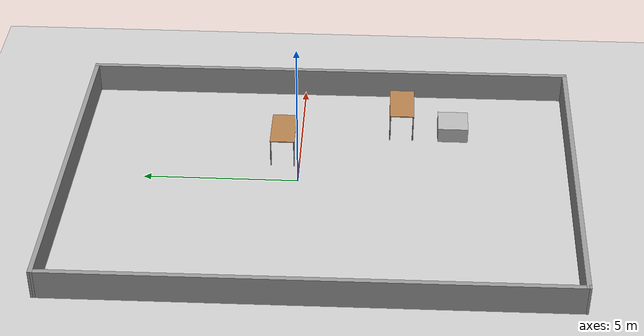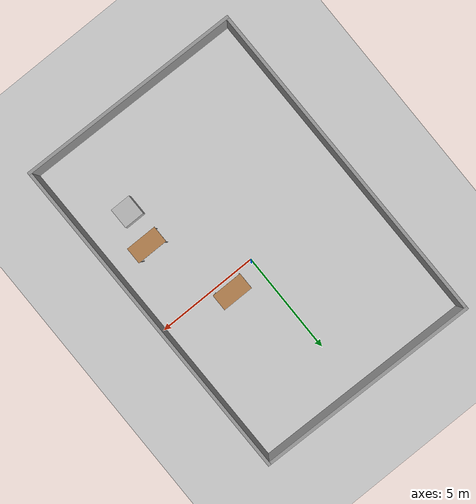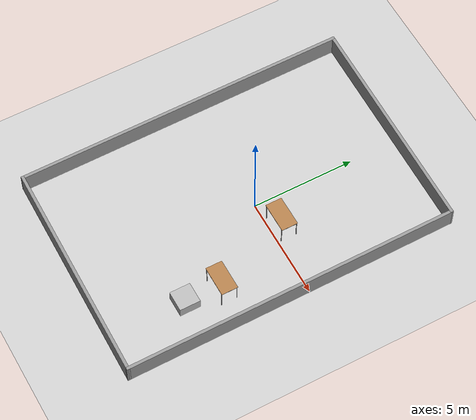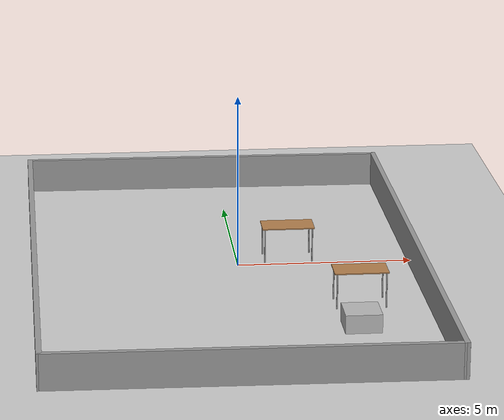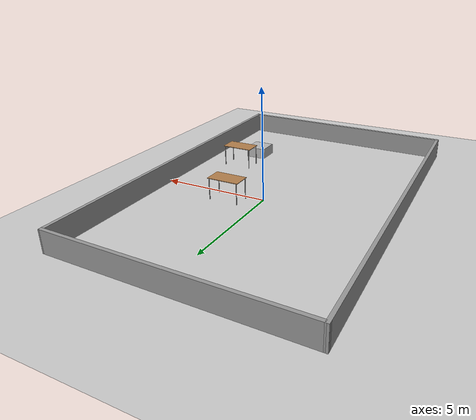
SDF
<sdf version="1.7">
 <world name="default">
  <light name="sun" type="directional">
   <pose>0 0 10 0 -0 0</pose>
   <diffuse>0.8 0.8 0.8 1</diffuse>
   <specular>0.2 0.2 0.2 1</specular>
   <attenuation>
    <range>1000</range>
    <constant>0.9</constant>
    <linear>0.01</linear>
    <quadratic>0.001</quadratic>
   </attenuation>
   <direction>-0.5 0.1 -0.9</direction>
   <spot><inner_angle>0</inner_angle><outer_angle>0</outer_angle><falloff>0</falloff></spot>
  </light>
  <model name="ground_plane">
   <static>1</static>
   <link name="link">
    <collision name="collision">
     <geometry><plane><normal>0 0 1</normal><size>100 100</size></plane></geometry>
     <surface>
      <contact><collide_bitmask>65535</collide_bitmask></contact>
      <friction><ode><mu>100</mu><mu2>50</mu2></ode></friction>
     </surface>
    </collision>
    <visual name="visual">
     <cast_shadows>0</cast_shadows>
     <geometry><plane><normal>0 0 1</normal><size>100 100</size></plane></geometry>
     <material>
      <script><uri>file://media/materials/scripts/gazebo.material</uri><name>Gazebo/Grey</name></script>
     </material>
    </visual>
   </link>
  </model>
  <gravity>0 0 -9.8</gravity>
  <magnetic_field>6e-06 2.3e-05 -4.2e-05</magnetic_field>
  <atmosphere type="adiabatic"/>
  <physics type="ode">
   <max_step_size>0.001</max_step_size>
   <real_time_factor>1</real_time_factor>
   <real_time_update_rate>1000</real_time_update_rate>
  </physics>
  <scene><ambient>0.4 0.4 0.4 1</ambient><background>0.7 0.7 0.7 1</background><shadows>1</shadows></scene>
  <spherical_coordinates>
   <surface_model>EARTH_WGS84</surface_model>
   <latitude_deg>0</latitude_deg>
   <longitude_deg>0</longitude_deg>
   <elevation>0</elevation>
   <heading_deg>0</heading_deg>
  </spherical_coordinates>
  <model name="table">
   <static>1</static>
   <link name="link">
    <collision name="surface">
     <pose>0 0 1 0 -0 0</pose>
     <geometry><box><size>1.5 0.8 0.03</size></box></geometry>
     <surface><friction><ode><mu>0.6</mu><mu2>0.6</mu2></ode></friction></surface>
    </collision>
    <visual name="visual1">
     <pose>0 0 1 0 -0 0</pose>
     <geometry><box><size>1.5 0.8 0.03</size></box></geometry>
     <material>
      <script><uri>file://media/materials/scripts/gazebo.material</uri><name>Gazebo/Wood</name></script>
     </material>
    </visual>
    <collision name="front_left_leg">
     <pose>0.68 0.38 0.5 0 -0 0</pose>
     <geometry><cylinder><radius>0.02</radius><length>1</length></cylinder></geometry>
    </collision>
    <visual name="front_left_leg">
     <pose>0.68 0.38 0.5 0 -0 0</pose>
     <geometry><cylinder><radius>0.02</radius><length>1</length></cylinder></geometry>
     <material>
      <script><uri>file://media/materials/scripts/gazebo.material</uri><name>Gazebo/Grey</name></script>
     </material>
    </visual>
    <collision name="front_right_leg">
     <pose>0.68 -0.38 0.5 0 -0 0</pose>
     <geometry><cylinder><radius>0.02</radius><length>1</length></cylinder></geometry>
    </collision>
    <visual name="front_right_leg">
     <pose>0.68 -0.38 0.5 0 -0 0</pose>
     <geometry><cylinder><radius>0.02</radius><length>1</length></cylinder></geometry>
     <material>
      <script><uri>file://media/materials/scripts/gazebo.material</uri><name>Gazebo/Grey</name></script>
     </material>
    </visual>
    <collision name="back_right_leg">
     <pose>-0.68 -0.38 0.5 0 -0 0</pose>
     <geometry><cylinder><radius>0.02</radius><length>1</length></cylinder></geometry>
    </collision>
    <visual name="back_right_leg">
     <pose>-0.68 -0.38 0.5 0 -0 0</pose>
     <geometry><cylinder><radius>0.02</radius><length>1</length></cylinder></geometry>
     <material>
      <script><uri>file://media/materials/scripts/gazebo.material</uri><name>Gazebo/Grey</name></script>
     </material>
    </visual>
    <collision name="back_left_leg">
     <pose>-0.68 0.38 0.5 0 -0 0</pose>
     <geometry><cylinder><radius>0.02</radius><length>1</length></cylinder></geometry>
    </collision>
    <visual name="back_left_leg">
     <pose>-0.68 0.38 0.5 0 -0 0</pose>
     <geometry><cylinder><radius>0.02</radius><length>1</length></cylinder></geometry>
     <material>
      <script><uri>file://media/materials/scripts/gazebo.material</uri><name>Gazebo/Grey</name></script>
     </material>
    </visual>
   </link>
   <pose>1.47973 0.544887 0 0 -0 0</pose>
  </model>
  <model name="wooden_peg">
   <link name="link">
    <pose>0 0 0.04 0 -0 0</pose>
    <inertial>
     <mass>0.0175</mass>
     <inertia>
      <ixx>9.74923e-06</ixx>
      <ixy>0</ixy>
      <ixz>0</ixz>
      <iyy>9.74923e-06</iyy>
      <iyz>0</iyz>
      <izz>8.31797e-07</izz>
     </inertia>
    </inertial>
    <collision name="collision">
     <geometry><cylinder><radius>0.00975</radius><length>0.08</length></cylinder></geometry>
     <surface>
      <contact>
       <poissons_ratio>0.347</poissons_ratio>
       <elastic_modulus>8.8e+09</elastic_modulus>
       <ode><kp>100000</kp><kd>100</kd><max_vel>100</max_vel><min_depth>0.001</min_depth></ode>
      </contact>
      <friction>
       <torsional>
        <coefficient>1</coefficient>
        <use_patch_radius>0</use_patch_radius>
        <surface_radius>0.01</surface_radius>
       </torsional>
      </friction>
     </surface>
    </collision>
    <visual name="visual">
     <geometry><cylinder><radius>0.00975</radius><length>0.08</length></cylinder></geometry>
     <material>
      <script><uri>file://media/materials/scripts/gazebo.material</uri><name>Gazebo/Wood</name></script>
     </material>
    </visual>
   </link>
   <pose>3.06798 -5.09301 -0.001 0 -0 0</pose>
  </model>
  <model name="Table">
   <static>1</static>
   <link name="link">
    <collision name="surface">
     <pose>0 0 1 0 -0 0</pose>
     <geometry><box><size>1.5 0.8 0.03</size></box></geometry>
     <surface><friction><ode><mu>0.6</mu><mu2>0.6</mu2></ode></friction></surface>
    </collision>
    <visual name="visual1">
     <pose>0 0 1 0 -0 0</pose>
     <geometry><box><size>1.5 0.8 0.03</size></box></geometry>
     <material>
      <diffuse>1 1 1 1</diffuse>
      <script><uri>file://media/materials/scripts/gazebo.material</uri><name>Gazebo/Wood</name></script>
      <pbr>
       <metal>
        <albedo_map>https://fuel.gazebosim.org/1.0/malbonico/models/table/1/files/Table_Diffuse.jpg</albedo_map>
       </metal>
      </pbr>
     </material>
    </visual>
    <collision name="front_left_leg">
     <pose>0.68 0.38 0.5 0 -0 0</pose>
     <geometry><cylinder><radius>0.02</radius><length>1</length></cylinder></geometry>
    </collision>
    <visual name="front_left_leg">
     <pose>0.68 0.38 0.5 0 -0 0</pose>
     <geometry><cylinder><radius>0.02</radius><length>1</length></cylinder></geometry>
     <material>
      <diffuse>0.5 0.5 0.5 1</diffuse>
      <script><uri>file://media/materials/scripts/gazebo.material</uri><name>Gazebo/Grey</name></script>
     </material>
    </visual>
    <collision name="front_right_leg">
     <pose>0.68 -0.38 0.5 0 -0 0</pose>
     <geometry><cylinder><radius>0.02</radius><length>1</length></cylinder></geometry>
    </collision>
    <visual name="front_right_leg">
     <pose>0.68 -0.38 0.5 0 -0 0</pose>
     <geometry><cylinder><radius>0.02</radius><length>1</length></cylinder></geometry>
     <material>
      <diffuse>0.5 0.5 0.5 1</diffuse>
      <script><uri>file://media/materials/scripts/gazebo.material</uri><name>Gazebo/Grey</name></script>
     </material>
    </visual>
    <collision name="back_right_leg">
     <pose>-0.68 -0.38 0.5 0 -0 0</pose>
     <geometry><cylinder><radius>0.02</radius><length>1</length></cylinder></geometry>
    </collision>
    <visual name="back_right_leg">
     <pose>-0.68 -0.38 0.5 0 -0 0</pose>
     <geometry><cylinder><radius>0.02</radius><length>1</length></cylinder></geometry>
     <material>
      <diffuse>0.5 0.5 0.5 1</diffuse>
      <script><uri>file://media/materials/scripts/gazebo.material</uri><name>Gazebo/Grey</name></script>
     </material>
    </visual>
    <collision name="back_left_leg">
     <pose>-0.68 0.38 0.5 0 -0 0</pose>
     <geometry><cylinder><radius>0.02</radius><length>1</length></cylinder></geometry>
    </collision>
    <visual name="back_left_leg">
     <pose>-0.68 0.38 0.5 0 -0 0</pose>
     <geometry><cylinder><radius>0.02</radius><length>1</length></cylinder></geometry>
     <material>
      <diffuse>0.5 0.5 0.5 1</diffuse>
      <script><uri>file://media/materials/scripts/gazebo.material</uri><name>Gazebo/Grey</name></script>
     </material>
    </visual>
   </link>
   <pose>3.06278 -3.33067 0 0 -0 0</pose>
  </model>
  <model name="Backpack">
   <static>1</static>
   <link name="link">
    <collision name="collision"><geometry><box><size>1 1 1</size></box></geometry></collision>
    <visual name="visual"><geometry><box><size>1 1 1</size></box></geometry></visual>
   </link>
   <pose>2.87277 -5.05645 0 0 -0 0</pose>
  </model>
  <model name="wall_boundary">
   <pose>-0.422955 -0.7315 0 0 -0 0</pose>
   <link name="Wall_21">
    <collision name="Wall_21_Collision">
     <geometry><box><size>10.9434 0.15 1</size></box></geometry>
     <pose>0 0 0.5 0 -0 0</pose>
    </collision>
    <visual name="Wall_21_Visual">
     <pose>0 0 0.5 0 -0 0</pose>
     <geometry><box><size>10.9434 0.15 1</size></box></geometry>
     <material>
      <script><uri>file://media/materials/scripts/gazebo.material</uri><name>Gazebo/Grey</name></script>
      <ambient>1 1 1 1</ambient>
     </material>
     <meta><layer>0</layer></meta>
    </visual>
    <pose>0.040955 -8.088 0 0 -0 -0.015103</pose>
   </link>
   <link name="Wall_22">
    <collision name="Wall_22_Collision">
     <geometry><box><size>16.3256 0.15 1</size></box></geometry>
     <pose>0 0 0.5 0 -0 0</pose>
    </collision>
    <visual name="Wall_22_Visual">
     <pose>0 0 0.5 0 -0 0</pose>
     <geometry><box><size>16.3256 0.15 1</size></box></geometry>
     <material>
      <script><uri>file://media/materials/scripts/gazebo.material</uri><name>Gazebo/Grey</name></script>
      <ambient>1 1 1 1</ambient>
     </material>
     <meta><layer>0</layer></meta>
    </visual>
    <pose>5.39595 -0.0815 0 0 -0 1.57587</pose>
   </link>
   <link name="Wall_23">
    <collision name="Wall_23_Collision">
     <geometry><box><size>10.9432 0.15 1</size></box></geometry>
     <pose>0 0 0.5 0 -0 0</pose>
    </collision>
    <visual name="Wall_23_Visual">
     <pose>0 0 0.5 0 -0 0</pose>
     <geometry><box><size>10.9432 0.15 1</size></box></geometry>
     <material>
      <script><uri>file://media/materials/scripts/gazebo.material</uri><name>Gazebo/Grey</name></script>
      <ambient>1 1 1 1</ambient>
     </material>
     <meta><layer>0</layer></meta>
    </visual>
    <pose>-0.041045 8.088 0 0 -0 3.12649</pose>
   </link>
   <link name="Wall_24">
    <collision name="Wall_24_Collision">
     <geometry><box><size>16.3256 0.15 1</size></box></geometry>
     <pose>0 0 0.5 0 -0 0</pose>
    </collision>
    <visual name="Wall_24_Visual">
     <pose>0 0 0.5 0 -0 0</pose>
     <geometry><box><size>16.3256 0.15 1</size></box></geometry>
     <material>
      <script><uri>file://media/materials/scripts/gazebo.material</uri><name>Gazebo/Grey</name></script>
      <ambient>1 1 1 1</ambient>
     </material>
     <meta><layer>0</layer></meta>
    </visual>
    <pose>-5.39604 0.0815 0 0 -0 -1.56573</pose>
   </link>
   <static>1</static>
  </model>
 </world>
</sdf>
